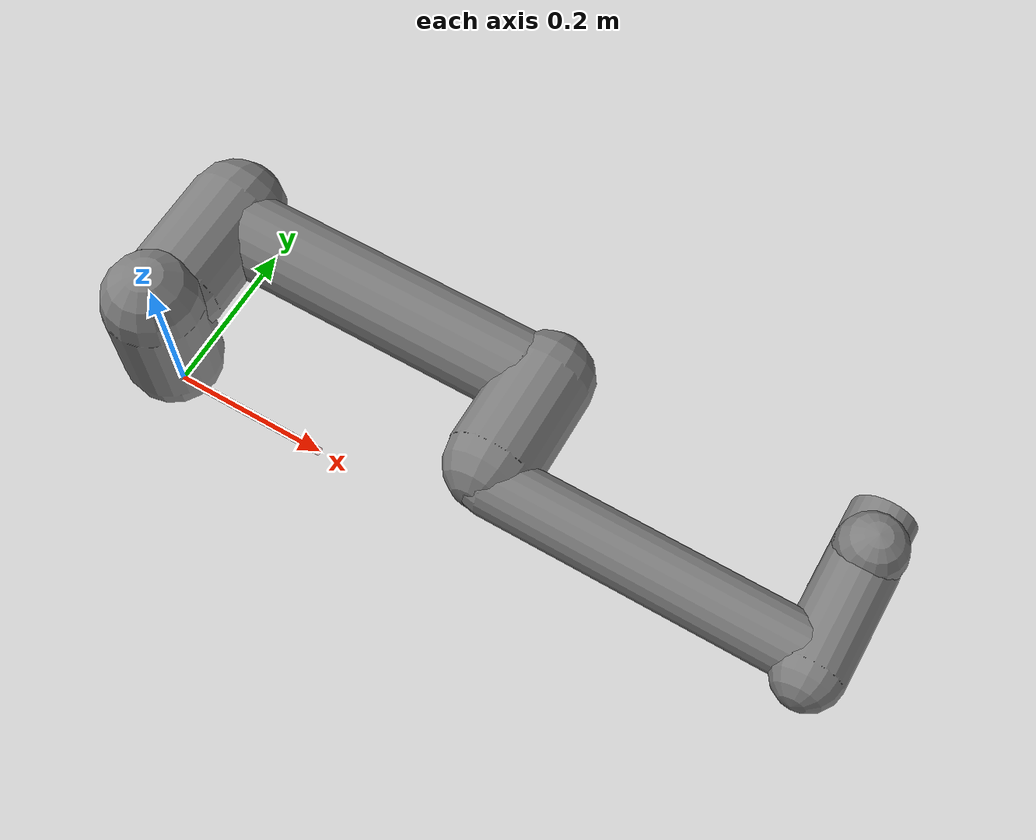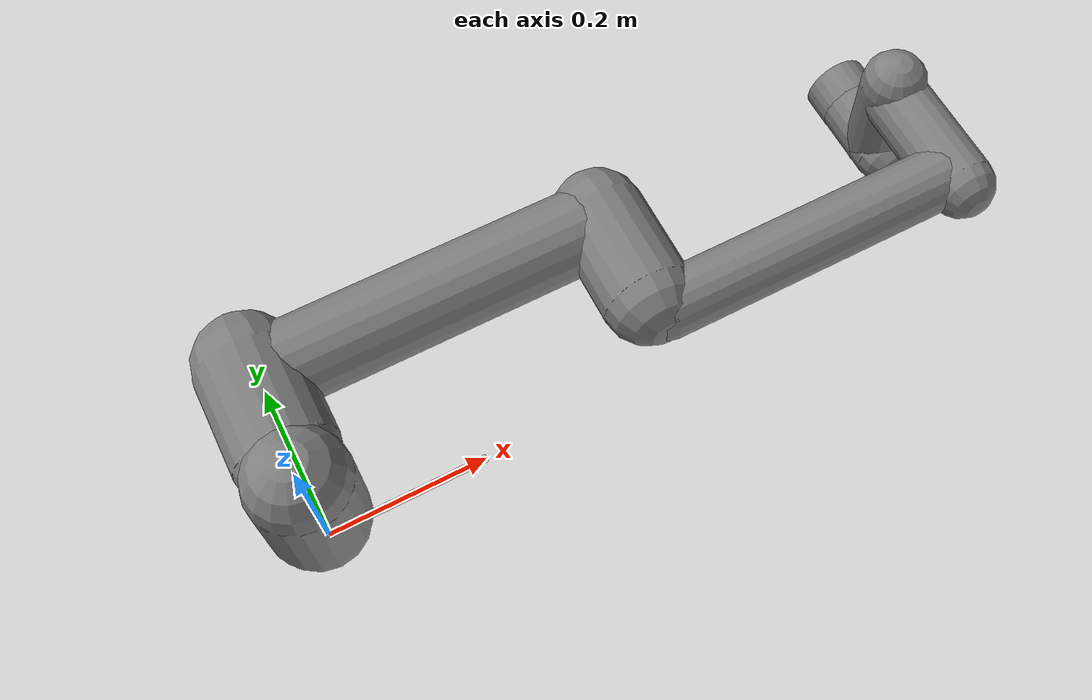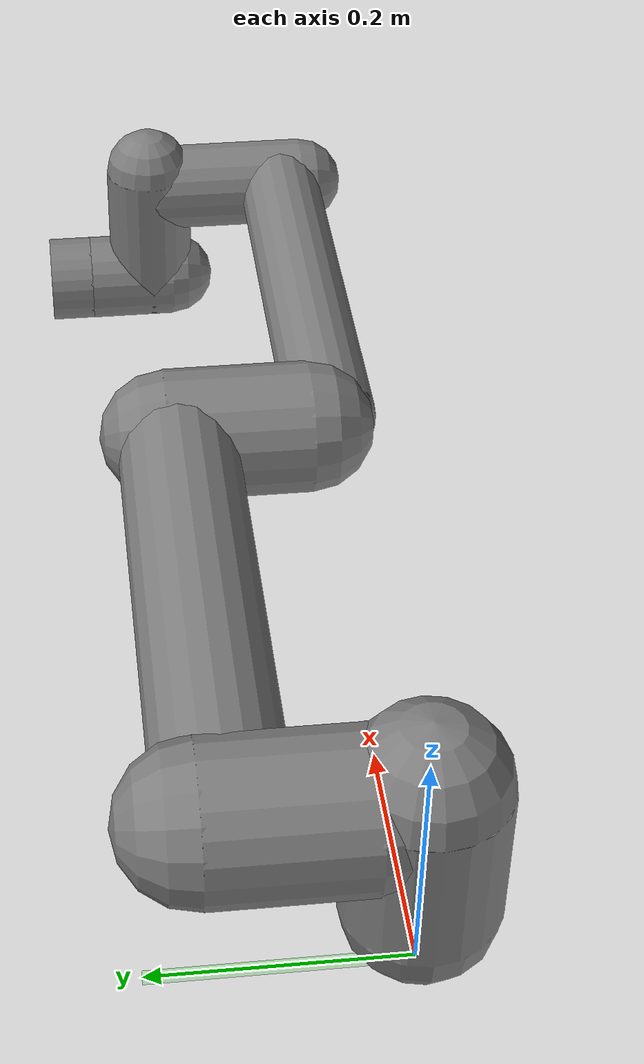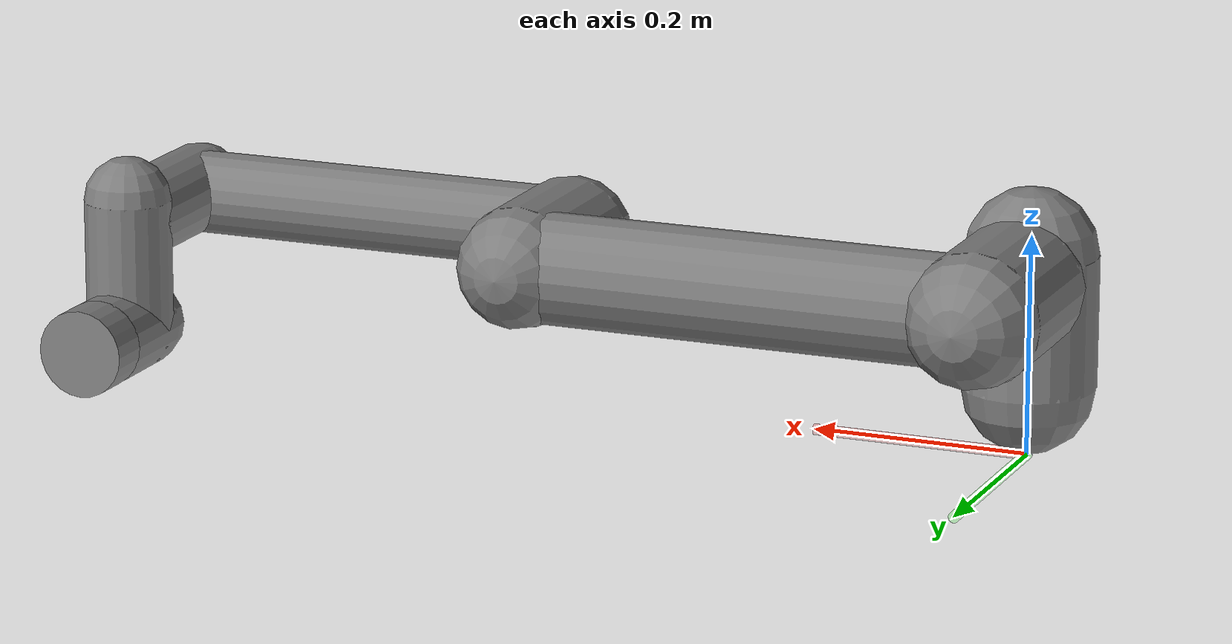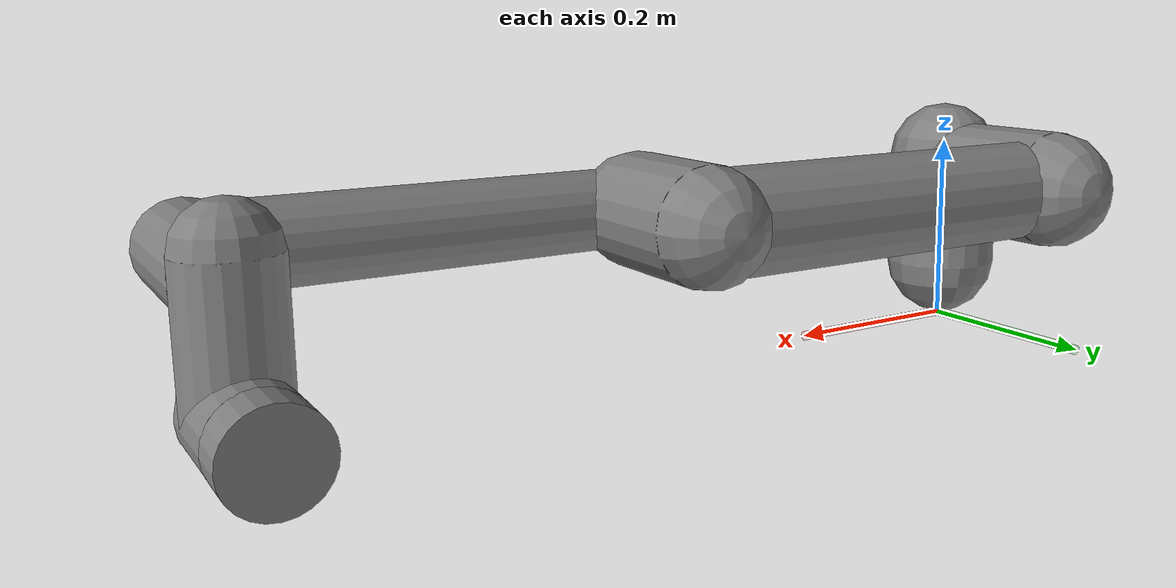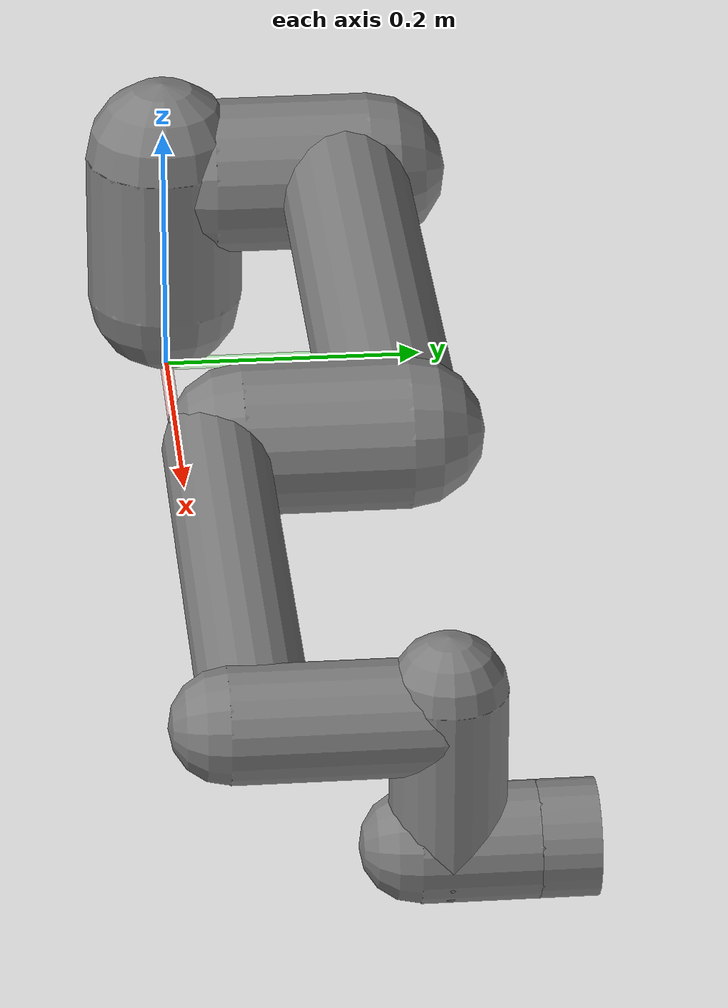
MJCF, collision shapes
<mujoco model="ur5e">
  <compiler angle="radian" autolimits="true"/>

  <option integrator="implicitfast"/>

  <default>
    <default class="ur5e">
      <material specular="0.5" shininess="0.25"/>
      <joint axis="0 1 0" range="-6.28319 6.28319" armature="0.1"/>
      <general gaintype="fixed" biastype="affine" ctrlrange="-6.2831 6.2831" gainprm="2000" biasprm="0 -2000 -400"
        forcerange="-150 150"/>
      <default class="size3">
        <default class="size3_limited">
          <joint range="-3.1415 3.1415"/>
          <general ctrlrange="-3.1415 3.1415"/>
        </default>
      </default>
      <default class="size1">
        <general gainprm="500" biasprm="0 -500 -100" forcerange="-28 28"/>
      </default>
      <default class="visual">
        <geom type="mesh" contype="0" conaffinity="0" group="2"/>
      </default>
      <default class="collision">
        <geom type="capsule" group="3"/>
        <default class="eef_collision">
          <geom type="cylinder"/>
        </default>
      </default>
      <site size="0.001" rgba="0.5 0.5 0.5 0.3" group="4"/>
    </default>
  </default>

  <asset>
    <material class="ur5e" name="black" rgba="0.033 0.033 0.033 1"/>
    <material class="ur5e" name="jointgray" rgba="0.278 0.278 0.278 1"/>
    <material class="ur5e" name="linkgray" rgba="0.82 0.82 0.82 1"/>
    <material class="ur5e" name="urblue" rgba="0.49 0.678 0.8 1"/>

    <mesh file="meshes/base_0.obj"/>
    <mesh file="meshes/base_1.obj"/>
    <mesh file="meshes/shoulder_0.obj"/>
    <mesh file="meshes/shoulder_1.obj"/>
    <mesh file="meshes/shoulder_2.obj"/>
    <mesh file="meshes/upperarm_0.obj"/>
    <mesh file="meshes/upperarm_1.obj"/>
    <mesh file="meshes/upperarm_2.obj"/>
    <mesh file="meshes/upperarm_3.obj"/>
    <mesh file="meshes/forearm_0.obj"/>
    <mesh file="meshes/forearm_1.obj"/>
    <mesh file="meshes/forearm_2.obj"/>
    <mesh file="meshes/forearm_3.obj"/>
    <mesh file="meshes/wrist1_0.obj"/>
    <mesh file="meshes/wrist1_1.obj"/>
    <mesh file="meshes/wrist1_2.obj"/>
    <mesh file="meshes/wrist2_0.obj"/>
    <mesh file="meshes/wrist2_1.obj"/>
    <mesh file="meshes/wrist2_2.obj"/>
    <mesh file="meshes/wrist3.obj"/>
  </asset>

  <worldbody>
    <camera name="cam" mode="fixed" pos="0.5 0.00 1" quat="0.707 0 0 -0.707" fovy="45"/>
    <body name="base" childclass="ur5e">
      <site name="b_x" pos="0.1 0 0" size="0.005 .1"  quat="0.707105  0 0.707108 0 " rgba="1 0 0 .1" type="cylinder" group="1"/>
      <site name="b_y" pos="0 0.1 0" size="0.005 .1" quat="0.707105 0.707108 0 0" rgba="0 1 0 .1" type="cylinder" group="1"/>
      <site name="b_z" pos="0 0 0.1" size="0.005 .1" quat="1 0 0 0" rgba="0 0 1 .1" type="cylinder" group="1"/>

      <inertial mass="4.0" pos="0 0 0" diaginertia="0.00443333156 0.00443333156 0.0072"/>
      <geom mesh="base_0" material="black" class="visual"/>
      <geom mesh="base_1" material="jointgray" class="visual"/>
      <body name="shoulder_link" pos="0 0 0.163">
        <inertial mass="3.7" pos="0 0 0" diaginertia="0.0102675 0.0102675 0.00666"/>
        <joint name="shoulder_pan_joint" class="size3" axis="0 0 1"/>
        <geom mesh="shoulder_0" material="urblue" class="visual"/>
        <geom mesh="shoulder_1" material="black" class="visual"/>
        <geom mesh="shoulder_2" material="jointgray" class="visual"/>
        <geom class="collision" size="0.06 0.06" pos="0 0 -0.04"/>
        <body name="upper_arm_link" pos="0 0.138 0" quat="1 0 1 0">
          <inertial mass="8.393" pos="0 0 0.2125" diaginertia="0.133886 0.133886 0.0151074"/>
          <joint name="shoulder_lift_joint" class="size3"/>
          <geom mesh="upperarm_0" material="linkgray" class="visual"/>
          <geom mesh="upperarm_1" material="black" class="visual"/>
          <geom mesh="upperarm_2" material="jointgray" class="visual"/>
          <geom mesh="upperarm_3" material="urblue" class="visual"/>
          <geom class="collision" pos="0 -0.04 0" quat="1 1 0 0" size="0.06 0.06"/>
          <geom class="collision" size="0.05 0.2" pos="0 0 0.2"/>
          <body name="forearm_link" pos="0 -0.131 0.425">
            <inertial mass="2.275" pos="0 0 0.196" diaginertia="0.0311796 0.0311796 0.004095"/>
            <joint name="elbow_joint" class="size3_limited"/>
            <geom mesh="forearm_0" material="urblue" class="visual"/>
            <geom mesh="forearm_1" material="linkgray" class="visual"/>
            <geom mesh="forearm_2" material="black" class="visual"/>
            <geom mesh="forearm_3" material="jointgray" class="visual"/>
            <geom class="collision" pos="0 0.08 0" quat="1 1 0 0" size="0.055 0.06"/>
            <geom class="collision" size="0.038 0.19" pos="0 0 0.2"/>
            <body name="wrist_1_link" pos="0 0 0.392" quat="1 0 1 0">
              <inertial mass="1.219" pos="0 0.127 0" diaginertia="0.0025599 0.0025599 0.0021942"/>
              <joint name="wrist_1_joint" class="size1"/>
              <geom mesh="wrist1_0" material="black" class="visual"/>
              <geom mesh="wrist1_1" material="urblue" class="visual"/>
              <geom mesh="wrist1_2" material="jointgray" class="visual"/>
              <geom class="collision" pos="0 0.05 0" quat="1 1 0 0" size="0.04 0.07"/>
              <body name="wrist_2_link" pos="0 0.127 0">
                <inertial mass="1.219" pos="0 0 0.1" diaginertia="0.0025599 0.0025599 0.0021942"/>
                <joint name="wrist_2_joint" axis="0 0 1" class="size1"/>
                <geom mesh="wrist2_0" material="black" class="visual"/>
                <geom mesh="wrist2_1" material="urblue" class="visual"/>
                <geom mesh="wrist2_2" material="jointgray" class="visual"/>
                <geom class="collision" size="0.04 0.06" pos="0 0 0.04"/>
                <geom class="collision" pos="0 0.02 0.1" quat="1 1 0 0" size="0.04 0.04"/>
                <body name="wrist_3_link" pos="0 0 0.1">
                  <inertial mass="0.1889" pos="0 0.0771683 0" quat="1 0 0 1"
                    diaginertia="0.000132134 9.90863e-05 9.90863e-05"/>
                  <joint name="wrist_3_joint" class="size1"/>
                  <geom material="linkgray" mesh="wrist3" class="visual"/>
                  <geom class="eef_collision" pos="0 0.08 0" quat="1 1 0 0" size="0.04 0.02"/>
                  <body name="attachment" pos="0 0.1 0" quat="-1 1 0 0">
                      <site name="attachment_site"/>
                  </body>
                </body>
              </body>
            </body>
          </body>
        </body>
      </body>
    </body>
  </worldbody>

  <actuator>
        <!-- Physical limits of the actuator. -->
        <!-- Values taken from https://www.universal-robots.com/articles/ur-articles/max-joint-torques/ -->
        <motor ctrllimited="true" ctrlrange="-150.0 150.0" joint="shoulder_pan_joint" name="actuator1"/>
        <motor ctrllimited="true" ctrlrange="-150.0 150.0" joint="shoulder_lift_joint" name="actuator2"/>
        <motor ctrllimited="true" ctrlrange="-150.0 150.0" joint="elbow_joint" name="actuator3"/>
        <motor ctrllimited="true" ctrlrange="-28.0 28.0" joint="wrist_1_joint" name="actuator4"/>
        <motor ctrllimited="true" ctrlrange="-28.0 28.0" joint="wrist_2_joint" name="actuator5"/>
        <motor ctrllimited="true" ctrlrange="-28.0 28.0" joint="wrist_3_joint" name="actuator6"/>
    </actuator>

  <keyframe>
    <key name="home" qpos="-1.5708 -1.5708 1.5708 -1.5708 -1.5708 0" ctrl="-1.5708 -1.5708 1.5708 -1.5708 -1.5708 0"/>
  </keyframe>
</mujoco>
